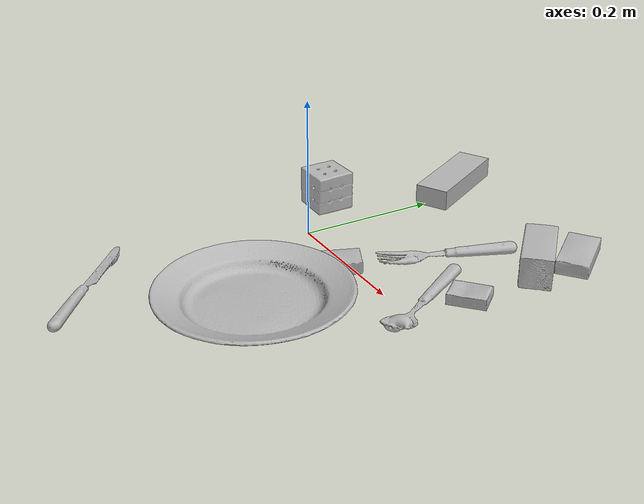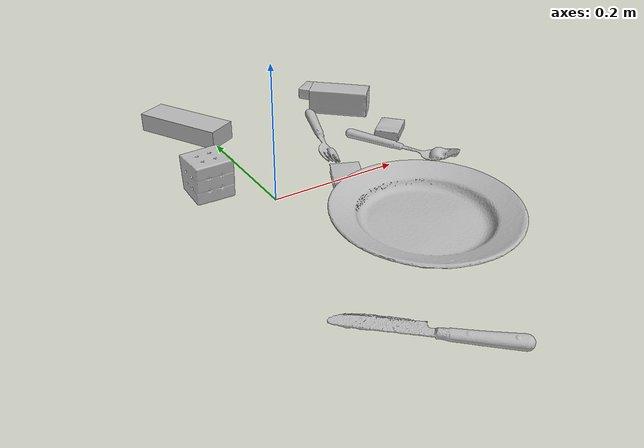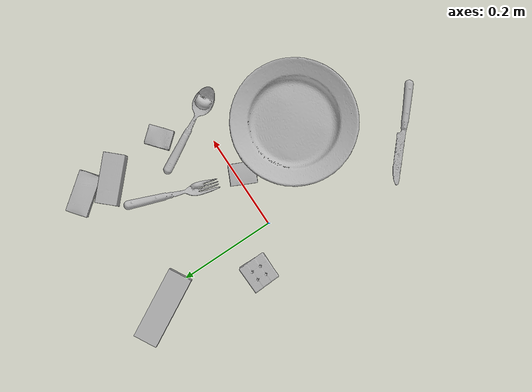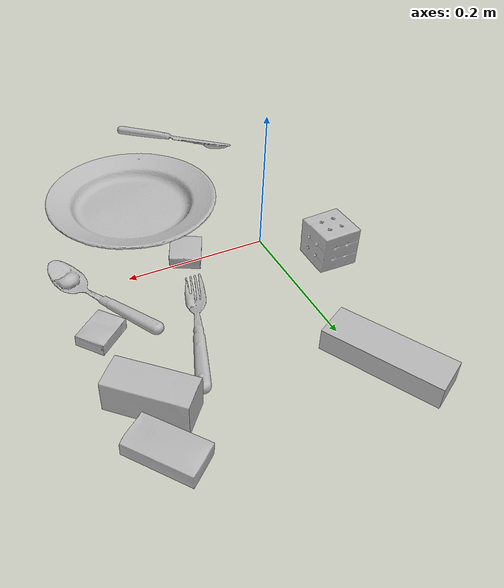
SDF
<sdf version="1.4">
  <world name="default">
    <light name="light1" type="point">
      <pose>0 0 1 0 0 0</pose>
      <diffuse>3 3 3 1</diffuse>
      <specular>3 3 3 1</specular>
    </light>
    <light name="light2" type="point">
      <pose>0 0.5 2 0 0 0</pose>
      <diffuse>1 1 1 1</diffuse>
      <specular>1 1 1 1</specular>
    </light>
    <light name="light3" type="point">
      <pose>0 0.5 2 0 0 0</pose>
      <diffuse>3 3 3 1</diffuse>
      <specular>3 3 3 1</specular>
    </light>
    <scene>
      <ambient>0.7 0.7 0.7</ambient>
    </scene>
    <model name="box11">
      <link name="link_box11">
        <collision name="default">
          <geometry>
            <mesh>
              <uri>model://cracker_box/collision_meshes/collision.obj</uri>
              <scale>0.25 0.25 0.25</scale>
            </mesh>
          </geometry>
          <surface>
            <friction>
              <ode>
                <mu>0.5</mu>
                <mu2>0.5</mu2>
              </ode>
            </friction>
          <contact>
        <ode>
            <max_vel>0</max_vel>
            <min_depth>0.0001</min_depth>
            <kp>1e8</kp>
        </ode>
    </contact></surface>
        </collision>
        <visual name="default">
          <geometry>
            <mesh>
              <uri>model://cracker_box/visual_meshes/visual.dae</uri>
              <scale>0.25 0.25 0.25</scale>
            </mesh>
          </geometry>
        </visual>
        <inertial>
          <mass>0.022244147956371307</mass>
          <pose>0.00023660442093387246 6.358561950037256e-05 -0.00042573834070935845 -0.00031620774024180285 -0.011106489600345375 0.0025467943041161943</pose>
          <inertia>
            <ixx>3.5361988e-06</ixx>
            <iyy>5.838959e-06</iyy>
            <izz>8.33273e-06</izz>
            <ixy>0</ixy>
            <ixz>0</ixz>
            <iyz>0</iyz>
          </inertia>
        </inertial>
      </link>
      <pose>0.26632922887802124 0.08732808381319046 0.009120451286435127 -0.011788172442924677 -0.0073670334135818374 0.6997852521805332</pose>
    </model>
    <model name="box12">
      <link name="link_box12">
        <collision name="default">
          <geometry>
            <mesh>
              <uri>model://wood_block/collision_meshes/collision.obj</uri>
              <scale>0.5 0.5 0.5</scale>
            </mesh>
          </geometry>
          <surface>
            <friction>
              <ode>
                <mu>0.5</mu>
                <mu2>0.5</mu2>
              </ode>
            </friction>
          <contact>
        <ode>
            <max_vel>0</max_vel>
            <min_depth>0.0001</min_depth>
            <kp>1e8</kp>
        </ode>
    </contact></surface>
        </collision>
        <visual name="default">
          <geometry>
            <mesh>
              <uri>model://wood_block/visual_meshes/visual.dae</uri>
              <scale>0.5 0.5 0.5</scale>
            </mesh>
          </geometry>
        </visual>
        <inertial>
          <mass>0.19826212525367737</mass>
          <pose>-2.9066577553749084e-06 -0.00028540476341731846 0.00013204291462898254 -0.05221087153268513 -0.0051926957009938435 -0.006861378574469354</pose>
          <inertia>
            <ixx>6.632619e-05</ixx>
            <iyy>0.00020952444</iyy>
            <izz>0.0002087407</izz>
            <ixy>0</ixy>
            <ixz>0</ixz>
            <iyz>0</iyz>
          </inertia>
        </inertial>
      </link>
      <pose>0.24765488505363464 0.21265999972820282 0.022629262879490852 -0.0052083831196152505 0.00571874467701495 -0.7496087575352123</pose>
    </model>
    <model name="box13">
      <link name="link_box13">
        <collision name="default">
          <geometry>
            <mesh>
              <uri>model://pudding_box/collision_meshes/collision.obj</uri>
              <scale>0.5 0.5 0.5</scale>
            </mesh>
          </geometry>
          <surface>
            <friction>
              <ode>
                <mu>0.5</mu>
                <mu2>0.5</mu2>
              </ode>
            </friction>
          <contact>
        <ode>
            <max_vel>0</max_vel>
            <min_depth>0.0001</min_depth>
            <kp>1e8</kp>
        </ode>
    </contact></surface>
        </collision>
        <visual name="default">
          <geometry>
            <mesh>
              <uri>model://pudding_box/visual_meshes/visual.dae</uri>
              <scale>0.5 0.5 0.5</scale>
            </mesh>
          </geometry>
        </visual>
        <inertial>
          <mass>0.049741584807634354</mass>
          <pose>0.00024474109522998333 0.0004033942532259971 -0.0002594413817860186 0.005213101800084814 -0.006603799174386178 0.020079821432586128</pose>
          <inertia>
            <ixx>1.4057575e-05</ixx>
            <iyy>9.458037e-06</iyy>
            <izz>2.0759684e-05</izz>
            <ixy>0</ixy>
            <ixz>0</ixz>
            <iyz>0</iyz>
          </inertia>
        </inertial>
      </link>
      <pose>0.11184829473495483 -0.011892639100551605 0.00986290629953146 0.02234838649344638 -0.011391754826262068 -0.4434411285365121</pose>
    </model>
    <model name="box21">
      <link name="link_box21">
        <collision name="default">
          <geometry>
            <mesh>
              <uri>model://rubiks_cube/collision_meshes/collision.obj</uri>
              <scale>1.0 1.0 1.0</scale>
            </mesh>
          </geometry>
          <surface>
            <friction>
              <ode>
                <mu>0.5</mu>
                <mu2>0.5</mu2>
              </ode>
            </friction>
          <contact>
        <ode>
            <max_vel>0</max_vel>
            <min_depth>0.0001</min_depth>
            <kp>1e8</kp>
        </ode>
    </contact></surface>
        </collision>
        <visual name="default">
          <geometry>
            <mesh>
              <uri>model://rubiks_cube/visual_meshes/visual.dae</uri>
              <scale>1.0 1.0 1.0</scale>
            </mesh>
          </geometry>
        </visual>
        <inertial>
          <mass>0.14589080214500427</mass>
          <pose>2.6721043468569405e-05 5.256966323941015e-05 -7.264316082000732e-06 -0.054672881442690106 -0.09814117646273159 -0.034455034483302956</pose>
          <inertia>
            <ixx>8.061447e-05</ixx>
            <iyy>8.023852e-05</iyy>
            <izz>8.128248e-05</izz>
            <ixy>0</ixy>
            <ixz>0</ixz>
            <iyz>0</iyz>
          </inertia>
        </inertial>
      </link>
      <pose>-0.0702848955988884 0.07020825147628784 0.02867899090051651 -1.6354659316891702e-06 4.6330453307598754e-07 1.5919276730603211</pose>
    </model>
    <model name="box22">
      <link name="link_box22">
        <collision name="default">
          <geometry>
            <mesh>
              <uri>model://jenga/collision_meshes/collision.obj</uri>
              <scale>1.0 1.0 1.0</scale>
            </mesh>
          </geometry>
          <surface>
            <friction>
              <ode>
                <mu>0.5</mu>
                <mu2>0.5</mu2>
              </ode>
            </friction>
          <contact>
        <ode>
            <max_vel>0</max_vel>
            <min_depth>0.0001</min_depth>
            <kp>1e8</kp>
        </ode>
    </contact></surface>
        </collision>
        <visual name="default">
          <geometry>
            <mesh>
              <uri>model://jenga/visual_meshes/visual.dae</uri>
              <scale>1.0 1.0 1.0</scale>
            </mesh>
          </geometry>
        </visual>
        <inertial>
          <mass>0.13963866233825684</mass>
          <pose>-2.502855807051674e-07 -0.00010250010382151231 -4.092339804628864e-05 0.0 -7.342154049184251e-07 0.0</pose>
          <inertia>
            <ixx>3.8641407e-05</ixx>
            <iyy>0.00026183313</iyy>
            <izz>0.00027952914</izz>
            <ixy>0</ixy>
            <ixz>0</ixz>
            <iyz>0</iyz>
          </inertia>
        </inertial>
      </link>
      <pose>-0.022981716319918633 0.26865053176879883 0.014999997802078724 1.5405198566196952e-09 9.670621745437344e-11 2.0683414640199667</pose>
    </model>
    <model name="box23">
      <link name="link_box23">
        <collision name="default">
          <geometry>
            <mesh>
              <uri>model://sugar_box/collision_meshes/collision.obj</uri>
              <scale>0.5 0.5 0.5</scale>
            </mesh>
          </geometry>
          <surface>
            <friction>
              <ode>
                <mu>0.5</mu>
                <mu2>0.5</mu2>
              </ode>
            </friction>
          <contact>
        <ode>
            <max_vel>0</max_vel>
            <min_depth>0.0001</min_depth>
            <kp>1e8</kp>
        </ode>
    </contact></surface>
        </collision>
        <visual name="default">
          <geometry>
            <mesh>
              <uri>model://sugar_box/visual_meshes/visual.dae</uri>
              <scale>0.5 0.5 0.5</scale>
            </mesh>
          </geometry>
        </visual>
        <inertial>
          <mass>0.09426560252904892</mass>
          <pose>0.0005171863595023751 1.924554817378521e-05 -0.00018182402709499002 -0.00040462606744182556 0.0010506635219056535 0.0026153790218759383</pose>
          <inertia>
            <ixx>1.963546e-05</ixx>
            <iyy>6.346583e-05</iyy>
            <izz>7.597618e-05</izz>
            <ixy>0</ixy>
            <ixz>0</ixz>
            <iyz>0</iyz>
          </inertia>
        </inertial>
      </link>
      <pose>0.2556491196155548 0.27568942308425903 0.011399304494261742 0.0007753611242043333 -0.02343312871859664 2.2222711419479597</pose>
    </model>
    <model name="plate1">
      <link name="link_plate1">
        <collision name="default">
          <geometry>
            <mesh>
              <uri>model://plate/collision_meshes/collision.obj</uri>
              <scale>1.0 1.0 1.0</scale>
            </mesh>
          </geometry>
          <surface>
            <friction>
              <ode>
                <mu>0.5</mu>
                <mu2>0.5</mu2>
              </ode>
            </friction>
          <contact>
        <ode>
            <max_vel>0</max_vel>
            <min_depth>0.0001</min_depth>
            <kp>1e8</kp>
        </ode>
    </contact></surface>
        </collision>
        <visual name="default">
          <geometry>
            <mesh>
              <uri>model://plate/visual_meshes/visual.dae</uri>
              <scale>1.0 1.0 1.0</scale>
            </mesh>
          </geometry>
        </visual>
        <inertial>
          <mass>0.11197491735219955</mass>
          <pose>-0.0006044617621228099 0.00027825823053717613 -0.001056199544109404 0.00221882520869589 -0.003225452482750881 0.45259630068278056</pose>
          <inertia>
            <ixx>0.0005238209</ixx>
            <iyy>0.00051881076</iyy>
            <izz>0.0010245154</izz>
            <ixy>0</ixy>
            <ixz>0</ixz>
            <iyz>0</iyz>
          </inertia>
        </inertial>
      </link>
      <pose>0.140383780002594 -0.15551084280014038 0.013732992112636566 2.0389508137430568e-10 -1.2972994621726992e-09 0.1351660429651355</pose>
    </model>
    <model name="silverware1">
      <link name="link_silverware1">
        <collision name="default">
          <geometry>
            <mesh>
              <uri>model://knife/collision_meshes/collision.obj</uri>
              <scale>1.0 1.0 1.0</scale>
            </mesh>
          </geometry>
          <surface>
            <friction>
              <ode>
                <mu>0.5</mu>
                <mu2>0.5</mu2>
              </ode>
            </friction>
          <contact>
        <ode>
            <max_vel>0</max_vel>
            <min_depth>0.0001</min_depth>
            <kp>1e8</kp>
        </ode>
    </contact></surface>
        </collision>
        <visual name="default">
          <geometry>
            <mesh>
              <uri>model://knife/visual_meshes/visual.dae</uri>
              <scale>1.0 1.0 1.0</scale>
            </mesh>
          </geometry>
        </visual>
        <inertial>
          <mass>0.01465720683336258</mass>
          <pose>-0.023785248398780823 0.0015275123296305537 5.062019408796914e-05 0.07304601322977639 0.017248415474028462 -0.007409829977624996</pose>
          <inertia>
            <ixx>4.1603096e-07</ixx>
            <iyy>5.6310615e-05</iyy>
            <izz>5.6444613e-05</izz>
            <ixy>0</ixy>
            <ixz>0</ixz>
            <iyz>0</iyz>
          </inertia>
        </inertial>
      </link>
      <pose>0.003397870808839798 -0.32592111825942993 0.008136841468513012 -0.2817313324590294 -0.008871971279646942 2.4113192357208315</pose>
    </model>
    <model name="silverware2">
      <link name="link_silverware2">
        <collision name="default">
          <geometry>
            <mesh>
              <uri>model://spoon/collision_meshes/collision.obj</uri>
              <scale>1.0 1.0 1.0</scale>
            </mesh>
          </geometry>
          <surface>
            <friction>
              <ode>
                <mu>0.5</mu>
                <mu2>0.5</mu2>
              </ode>
            </friction>
          <contact>
        <ode>
            <max_vel>0</max_vel>
            <min_depth>0.0001</min_depth>
            <kp>1e8</kp>
        </ode>
    </contact></surface>
        </collision>
        <visual name="default">
          <geometry>
            <mesh>
              <uri>model://spoon/visual_meshes/visual.dae</uri>
              <scale>1.0 1.0 1.0</scale>
            </mesh>
          </geometry>
        </visual>
        <inertial>
          <mass>0.03463635593652725</mass>
          <pose>-0.005526320077478886 -0.0016034176805987954 -0.0007271658396348357 0.035218626746325574 -0.03906584480927328 0.006150611928774215</pose>
          <inertia>
            <ixx>1.9265303e-06</ixx>
            <iyy>0.0001317902</iyy>
            <izz>0.00013274024</izz>
            <ixy>0</ixy>
            <ixz>0</ixz>
            <iyz>0</iyz>
          </inertia>
        </inertial>
      </link>
      <pose>0.2472747266292572 0.031060708686709404 0.008385264314711094 0.006729589231691011 0.026892918822189915 -1.07083642218085</pose>
    </model>
    <model name="silverware3">
      <link name="link_silverware3">
        <collision name="default">
          <geometry>
            <mesh>
              <uri>model://fork/collision_meshes/collision.obj</uri>
              <scale>1.0 1.0 1.0</scale>
            </mesh>
          </geometry>
          <surface>
            <friction>
              <ode>
                <mu>0.5</mu>
                <mu2>0.5</mu2>
              </ode>
            </friction>
          <contact>
        <ode>
            <max_vel>0</max_vel>
            <min_depth>0.0001</min_depth>
            <kp>1e8</kp>
        </ode>
    </contact></surface>
        </collision>
        <visual name="default">
          <geometry>
            <mesh>
              <uri>model://fork/visual_meshes/visual.dae</uri>
              <scale>1.0 1.0 1.0</scale>
            </mesh>
          </geometry>
        </visual>
        <inertial>
          <mass>0.019285527989268303</mass>
          <pose>-0.029570043087005615 0.0004658823017962277 0.0003218861238565296 -0.013551447953525298 -0.010977835959949084 0.014453901308334693</pose>
          <inertia>
            <ixx>6.760669e-07</ixx>
            <iyy>5.0348972e-05</iyy>
            <izz>5.065136e-05</izz>
            <ixy>0</ixy>
            <ixz>0</ixz>
            <iyz>0</iyz>
          </inertia>
        </inertial>
      </link>
      <pose>0.15572211146354675 0.13125352561473846 0.005723290611058474 -0.1838396032619269 0.02464652591055524 -1.9303806987009087</pose>
    </model>
  <physics type="ode">
      <max_contacts>50</max_contacts>
      <ode>
        <solver>
          <type>quick</type>
          <iters>75</iters>
        </solver>
        <constraints>
          <contact_max_correcting_vel>0</contact_max_correcting_vel>
          <contact_surface_layer>0</contact_surface_layer>
        </constraints>
      </ode>
    </physics></world>
</sdf>
